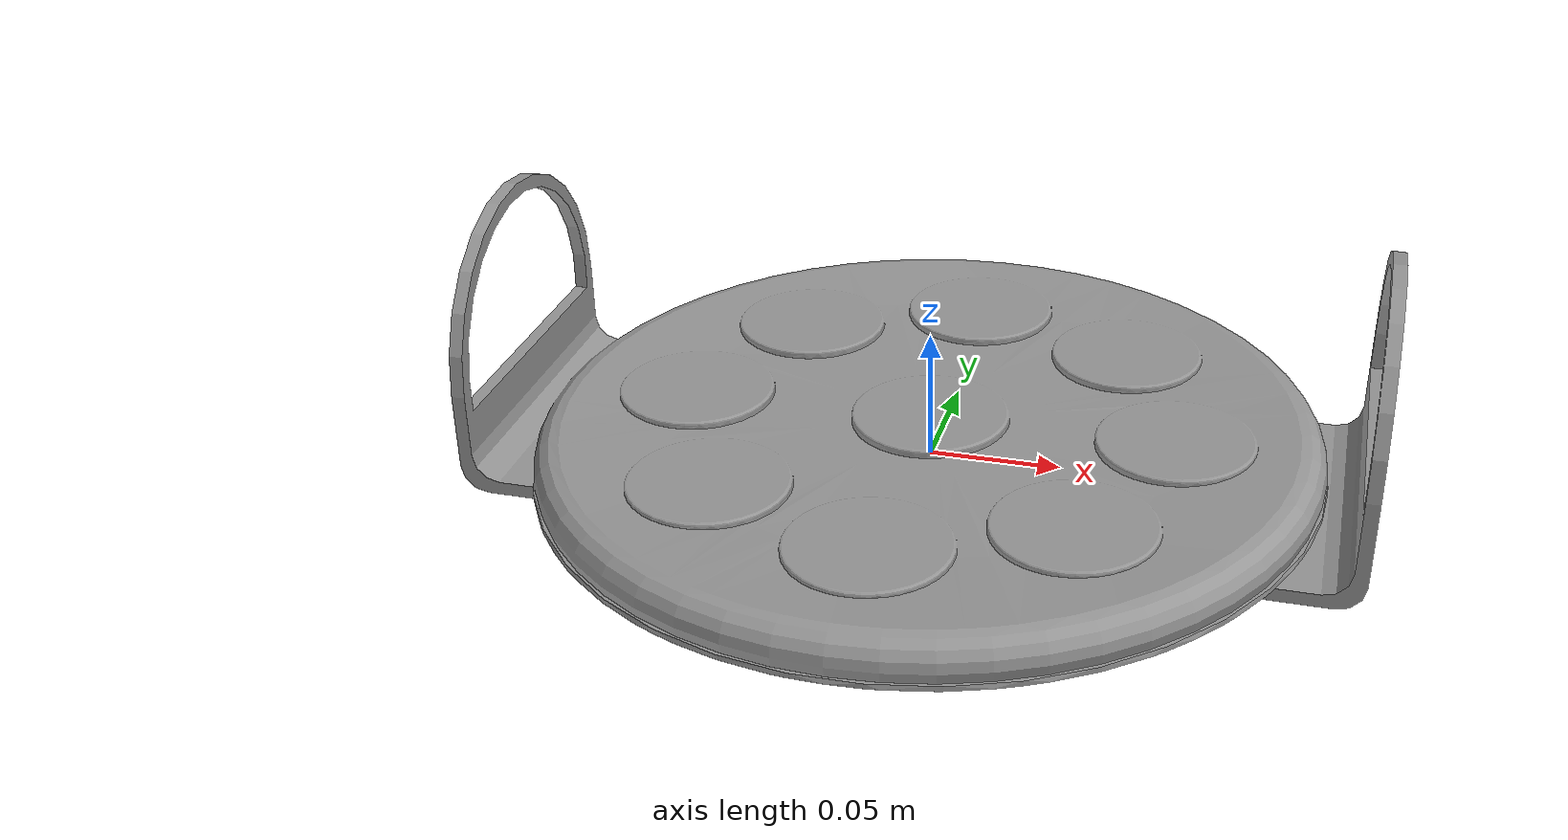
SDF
<?xml version='1.0'?>
<sdf version='1.6'>
  <model name='pizza'>
    <link name='link_0'>
      <inertial>
        <mass>1</mass>
        <inertia>
          <ixx>0.166667</ixx>
          <ixy>0</ixy>
          <ixz>0</ixz>
          <iyy>0.166667</iyy>
          <iyz>0</iyz>
          <izz>0.166667</izz>
        </inertia>
      </inertial>
      <pose frame=''>-0 -0 0 0 -0 0</pose>
      <visual name='visual'>
        <pose frame=''>0 0 0 0 -0 0</pose>
        <geometry>
          <mesh>
            <uri>model://pizza/meshes/pizza.stl</uri>
            <scale>1 1 1</scale>
          </mesh>
        </geometry>
        <material>
          <lighting>1</lighting>
          <script>
            <uri>file://media/materials/scripts/gazebo.material</uri>
            <name>Gazebo/Grey</name>
          </script>
        </material>
        <cast_shadows>1</cast_shadows>
      </visual>
      <collision name='collision'>
        <pose frame=''>0 0 0 0 -0 0</pose>
        <geometry>
          <mesh>
            <uri>model://pizza/meshes/pizza.stl</uri>
            <scale>1 1 1</scale>
          </mesh>
        </geometry>
      </collision>
    </link>
    <static>true</static>
  </model>
</sdf>
